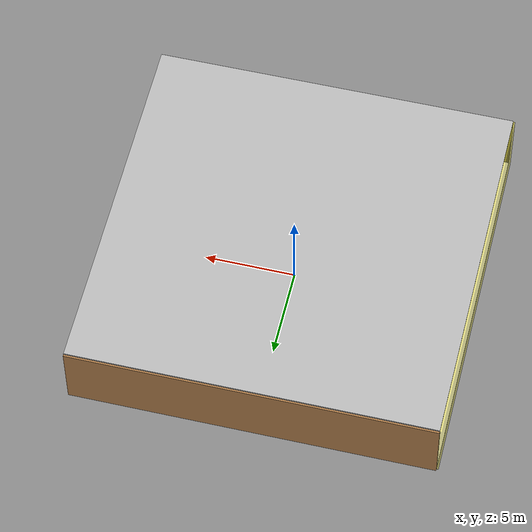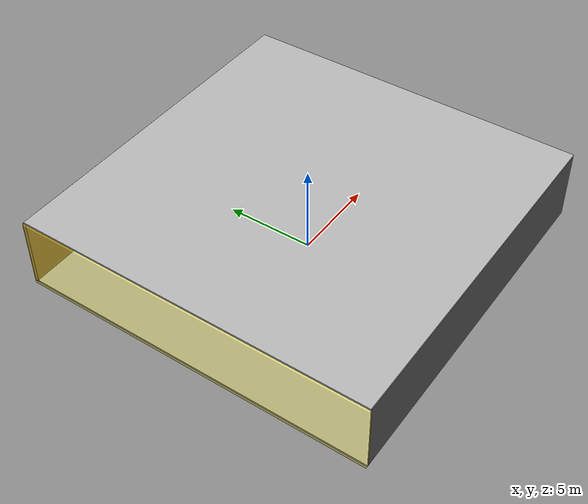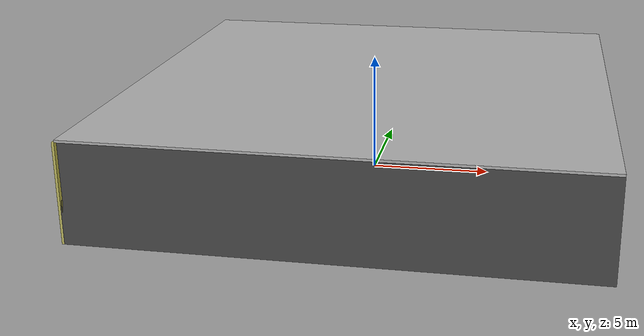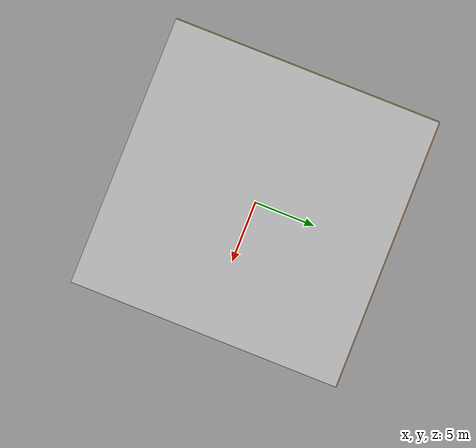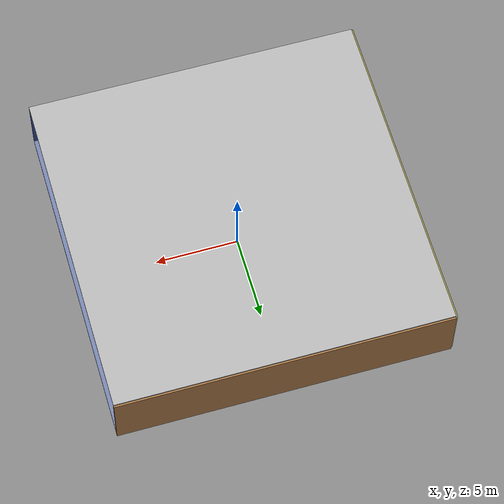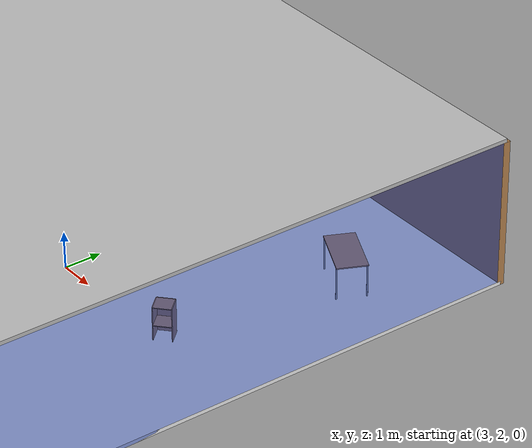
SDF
<sdf version="1.4">
 <world name="default">
  <physics type="ode">
   <max_step_size>0.001</max_step_size>
   <real_time_factor>1</real_time_factor>
   <real_time_update_rate>1000</real_time_update_rate>
   <gravity>0 0 -9.8</gravity>
  </physics>
  <scene><ambient>0.4 0.4 0.4 1</ambient><background>0.7 0.7 0.7 1</background><shadows>1</shadows></scene>
  <model name="Surrounding">
   <static>1</static>
   <link name="Ceiling">
    <collision name="Ceiling_Collision"><geometry><box><size>20 20 0.1</size></box></geometry></collision>
    <visual name="Ceiling_Visual">
     <geometry><box><size>20 20 0.1</size></box></geometry>
     <material>
      <script><uri>file://media/materials/scripts/gazebo.material</uri><name>Gazebo/PioneerBody</name></script>
     </material>
    </visual>
    <pose>0 0 4.05 0 0 0</pose>
   </link>
   <link name="Wall_South">
    <collision name="Wall_South_Collision">
     <geometry><box><size>20 0 4</size></box></geometry>
     <pose>0 0 2 0 -0 0</pose>
    </collision>
    <visual name="Wall_South_Visual">
     <pose>0 0 2 0 -0 0</pose>
     <geometry><box><size>20 0 4</size></box></geometry>
     <material>
      <script><uri>file://media/materials/scripts/gazebo.material</uri><name>Gazebo/DarkGrey</name></script>
     </material>
    </visual>
    <velocity_decay><linear>0</linear><angular>0</angular></velocity_decay>
    <pose>0 -10 0 0 -0 0</pose>
   </link>
   <link name="Wall_East">
    <collision name="Wall_21_Collision">
     <geometry><box><size>20 0 4</size></box></geometry>
     <pose>0 0 2 0 -0 0</pose>
    </collision>
    <visual name="Wall_21_Visual">
     <pose>0 0 2 0 -0 0</pose>
     <geometry><box><size>20 0 4</size></box></geometry>
     <material>
      <script><uri>file://media/materials/scripts/gazebo.material</uri><name>Gazebo/BlueTransparent</name></script>
     </material>
    </visual>
    <velocity_decay><linear>0</linear><angular>0</angular></velocity_decay>
    <pose>10 0 0 0 -0 1.5708</pose>
   </link>
   <link name="Wall_North">
    <collision name="Wall_22_Collision">
     <geometry><box><size>20 0.2 4</size></box></geometry>
     <pose>0 0 2 0 -0 0</pose>
    </collision>
    <visual name="Wall_22_Visual">
     <pose>0 0 2 0 -0 0</pose>
     <geometry><box><size>20 0.2 4</size></box></geometry>
     <material>
      <script><uri>file://media/materials/scripts/gazebo.material</uri><name>Gazebo/WoodFloor</name></script>
     </material>
    </visual>
    <velocity_decay><linear>0</linear><angular>0</angular></velocity_decay>
    <pose>0 10 0 0 -0 0</pose>
   </link>
   <link name="Wall_West">
    <collision name="Wall_23_Collision">
     <geometry><box><size>20 0.2 4</size></box></geometry>
     <pose>0 0 2 0 -0 0</pose>
    </collision>
    <visual name="Wall_23_Visual">
     <pose>0 0 2 0 -0 0</pose>
     <geometry><box><size>20 0.2 4</size></box></geometry>
     <material>
      <script>
       <uri>file://media/materials/scripts/gazebo.material</uri>
       <name>Gazebo/YellowTransparent</name>
      </script>
     </material>
    </visual>
    <velocity_decay><linear>0</linear><angular>0</angular></velocity_decay>
    <pose>-10 0 0 0 0 -1.5708</pose>
   </link>
   <link name="Ground_link">
    <collision name="collision">
     <pose>0 0 .05 0 -0 0</pose>
     <geometry><box><size>20 20 0.1</size></box></geometry>
    </collision>
    <visual name="visual">
     <pose>0 0 .05 0 -0 0</pose>
     <geometry><box><size>20 20 0.1</size></box></geometry>
     <material>
      <script><uri>file://media/materials/scripts/gazebo.material</uri><name>Gazebo/WhiteGlow</name></script>
     </material>
    </visual>
   </link>
   <static>1</static>
  </model>
  <spherical_coordinates>
   <surface_model>EARTH_WGS84</surface_model>
   <latitude_deg>0</latitude_deg>
   <longitude_deg>0</longitude_deg>
   <elevation>0</elevation>
   <heading_deg>0</heading_deg>
  </spherical_coordinates>
  <light name="lightball_0" type="diffuse">
   <diffuse>0.8 0.8 0.8 1</diffuse>
   <specular>0.2 0.2 0.2 1</specular>
   <attenuation>
    <range>100</range>
    <constant>0.7</constant>
    <linear>0.01</linear>
    <quadratic>0.001</quadratic>
   </attenuation>
   <direction>-0.5 0.1 -0.9</direction>
   <pose>2.93620628855 -0.419677707992 0.552656202598 0 0 0</pose>
  </light>
  <light name="lightball_1" type="diffuse">
   <diffuse>0.8 0.8 0.8 1</diffuse>
   <specular>0.2 0.2 0.2 1</specular>
   <attenuation>
    <range>100</range>
    <constant>0.7</constant>
    <linear>0.01</linear>
    <quadratic>0.001</quadratic>
   </attenuation>
   <direction>-0.5 0.1 -0.9</direction>
   <pose>-3.18243368911 1.79468355218 2.11702523428 0 0 0</pose>
  </light>
  <include><uri>model://table</uri><pose>-0.706562415516 -7.87660745803 0 0 0 1.43927621207</pose></include>
  <include><uri>model://table</uri><pose>1.99597615743 -1.21467964025 0 0 0 1.78997499569</pose></include>
  <include>
   <uri>model://construction_cone</uri>
   <pose>2.05605686132 5.12753359641 0 0 0 1.90785679858</pose>
  </include>
  <include><uri>model://cabinet</uri><pose>7.03342540736 2.14178440369 0 0 0 2.31137459208</pose></include>
  <include><uri>model://table</uri><pose>7.77267987372 6.96836262589 0 0 0 2.69476423652</pose></include>
 </world>
</sdf>

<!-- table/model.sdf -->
<sdf version="1.5">
  <model name="table">
    <static>true</static>
    <link name="link">
      <collision name="surface">
        <pose>0 0 1.0 0 0 0</pose>
        <geometry>
          <box>
            <size>1.5 0.8 0.03</size>
          </box>
        </geometry>
        <surface>
          <friction>
            <ode>
              <mu>0.6</mu>
              <mu2>0.6</mu2>
            </ode>
          </friction>
        </surface>
      </collision>
      <visual name="visual1">
        <pose>0 0 1.0 0 0 0</pose>
        <geometry>
          <box>
            <size>1.5 0.8 0.03</size>
          </box>
        </geometry>
        <material>
          <script>
            <uri>model://media/materials/scripts/gazebo.material</uri>
            <name>Gazebo/Wood</name>
          </script>
        </material>
      </visual>
      <collision name="front_left_leg">
        <pose>0.68 0.38 0.5 0 0 0</pose>
        <geometry>
          <cylinder>
            <radius>0.02</radius>
            <length>1.0</length>
          </cylinder>
        </geometry>
      </collision>
      <visual name="front_left_leg">
        <pose>0.68 0.38 0.5 0 0 0</pose>
        <geometry>
          <cylinder>
            <radius>0.02</radius>
            <length>1.0</length>
          </cylinder>
        </geometry>
        <material>
          <script>
            <uri>model://media/materials/scripts/gazebo.material</uri>
            <name>Gazebo/Grey</name>
          </script>
        </material>
      </visual>
      <collision name="front_right_leg">
        <pose>0.68 -0.38 0.5 0 0 0</pose>
        <geometry>
          <cylinder>
            <radius>0.02</radius>
            <length>1.0</length>
          </cylinder>
        </geometry>
      </collision>
      <visual name="front_right_leg">
        <pose>0.68 -0.38 0.5 0 0 0</pose>
        <geometry>
          <cylinder>
            <radius>0.02</radius>
            <length>1.0</length>
          </cylinder>
        </geometry>
        <material>
          <script>
            <uri>model://media/materials/scripts/gazebo.material</uri>
            <name>Gazebo/Grey</name>
          </script>
        </material>
      </visual>
      <collision name="back_right_leg">
        <pose>-0.68 -0.38 0.5 0 0 0</pose>
        <geometry>
          <cylinder>
            <radius>0.02</radius>
            <length>1.0</length>
          </cylinder>
        </geometry>
      </collision>
      <visual name="back_right_leg">
        <pose>-0.68 -0.38 0.5 0 0 0</pose>
        <geometry>
          <cylinder>
            <radius>0.02</radius>
            <length>1.0</length>
          </cylinder>
        </geometry>
        <material>
          <script>
            <uri>model://media/materials/scripts/gazebo.material</uri>
            <name>Gazebo/Grey</name>
          </script>
        </material>
      </visual>
      <collision name="back_left_leg">
        <pose>-0.68 0.38 0.5 0 0 0</pose>
        <geometry>
          <cylinder>
            <radius>0.02</radius>
            <length>1.0</length>
          </cylinder>
        </geometry>
      </collision>
      <visual name="back_left_leg">
        <pose>-0.68 0.38 0.5 0 0 0</pose>
        <geometry>
          <cylinder>
            <radius>0.02</radius>
            <length>1.0</length>
          </cylinder>
        </geometry>
        <material>
          <script>
            <uri>model://media/materials/scripts/gazebo.material</uri>
            <name>Gazebo/Grey</name>
          </script>
        </material>
      </visual>
    </link>
  </model>
</sdf>

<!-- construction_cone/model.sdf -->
<sdf version="1.5">
  <model name="Construction Cone">
    <link name="link">
      <collision name="collision">
        <geometry>
          <mesh>
            <scale>10 10 10</scale>
            <uri>file://isr-testbed/construction_cone/meshes/construction_cone.dae</uri>
          </mesh>
        </geometry>
      </collision>
      <visual name="visual">
        <geometry>
          <mesh>
            <scale>10 10 10</scale>
            <uri>file://isr-testbed/construction_cone/meshes/construction_cone.dae</uri>
          </mesh>
        </geometry>
      </visual>
    </link>
  </model>
</sdf>

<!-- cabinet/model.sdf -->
<sdf version="1.5">
  <model name="cabinet">
    <static>true</static>
    <link name="cabinet_bottom_plate">
      <inertial>
        <pose>0 0 -1 0 0 0</pose>
        <inertia>
          <ixx>2.050000</ixx>
          <ixy>0</ixy>
          <ixz>0</ixz>
          <iyy>2.050000</iyy>
          <iyz>0</iyz>
          <izz>2.050000</izz>
        </inertia>
        <mass>25.000000</mass>
      </inertial>
      <collision name="cabinet_bottom_plate_geom">
        <pose>0 0 0.010000 0 0 0</pose>
        <geometry>
          <box>
            <size>0.450000 0.450000 0.020000</size>
          </box>
        </geometry>
      </collision>
      <visual name="cabinet_bottom_plate_geom_visual">
        <pose>0 0 0.010000 0 0 0</pose>
        <geometry>
          <box>
            <size>0.450000 0.450000 0.020000</size>
          </box>
        </geometry>
        <material>
          <script>
            <uri>model://media/materials/scripts/gazebo.material</uri>
            <name>Gazebo/Wood</name>
          </script>
        </material>
      </visual>
      <collision name="cabinet_bottom_plate_geom_cabinet_back_plate">
        <pose>0.235000 0 0.510000 0 0 0</pose>
        <geometry>
          <box>
            <size>0.020000 0.450000 1.020000</size>
          </box>
        </geometry>
      </collision>
      <visual name="cabinet_bottom_plate_geom_cabinet_back_plate_visual">
        <pose>0.235000 0 0.510000 0 0 0</pose>
        <geometry>
          <box>
            <size>0.020000 0.450000 1.020000</size>
          </box>
        </geometry>
        <material>
          <script>
            <uri>model://media/materials/scripts/gazebo.material</uri>
            <name>Gazebo/Wood</name>
          </script>
        </material>
      </visual>
      <collision name="cabinet_bottom_plate_geom_cabinet_left_plate">
        <pose>0 0.235000 0.510000 0 0 0</pose>
        <geometry>
          <box>
            <size>0.450000 0.020000 1.020000</size>
          </box>
        </geometry>
      </collision>
      <visual name="cabinet_bottom_plate_geom_cabinet_left_plate_visual">
        <pose>0 0.235000 0.510000 0 0 0</pose>
        <geometry>
          <box>
            <size>0.450000 0.020000 1.020000</size>
          </box>
        </geometry>
        <material>
          <script>
            <uri>model://media/materials/scripts/gazebo.material</uri>
            <name>Gazebo/Wood</name>
          </script>
        </material>
      </visual>
      <collision name="cabinet_bottom_plate_geom_cabinet_middle_plate">
        <pose>0 0 0.510000 0 0 0</pose>
        <geometry>
          <box>
            <size>0.450000 0.450000 0.020000</size>
          </box>
        </geometry>
      </collision>
      <visual name="cabinet_bottom_plate_geom_cabinet_middle_plate_visual">
        <pose>0 0 0.510000 0 0 0</pose>
        <geometry>
          <box>
            <size>0.450000 0.450000 0.020000</size>
          </box>
        </geometry>
        <material>
          <script>
            <uri>model://media/materials/scripts/gazebo.material</uri>
            <name>Gazebo/Wood</name>
          </script>
        </material>
      </visual>
      <collision name="cabinet_bottom_plate_geom_cabinet_right_plate">
        <pose>0 -0.235000 0.510000 0 0 0</pose>
        <geometry>
          <box>
            <size>0.450000 0.020000 1.020000</size>
          </box>
        </geometry>
      </collision>
      <visual name="cabinet_bottom_plate_geom_cabinet_right_plate_visual">
        <pose>0 -0.235000 0.510000 0 0 0</pose>
        <geometry>
          <box>
            <size>0.450000 0.020000 1.020000</size>
          </box>
        </geometry>
        <material>
          <script>
            <uri>model://media/materials/scripts/gazebo.material</uri>
            <name>Gazebo/Wood</name>
          </script>
        </material>
      </visual>
      <collision name="cabinet_bottom_plate_geom_cabinet_top_plate">
        <pose>0 0 1.010000 0 0 0</pose>
        <geometry>
          <box>
            <size>0.450000 0.450000 0.020000</size>
          </box>
        </geometry>
      </collision>
      <visual name="cabinet_bottom_plate_geom_cabinet_top_plate_visual">
        <pose>0 0 1.010000 0 0 0</pose>
        <geometry>
          <box>
            <size>0.450000 0.450000 0.020000</size>
          </box>
        </geometry>
        <material>
          <script>
            <uri>model://media/materials/scripts/gazebo.material</uri>
            <name>Gazebo/Wood</name>
          </script>
        </material>
      </visual>
    </link>
  </model>
</sdf>
